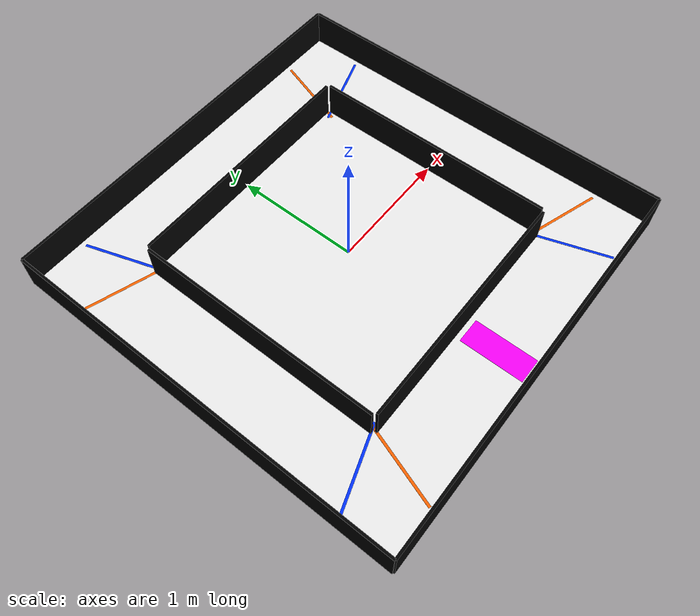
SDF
<sdf version="1.8">
 <world name="wro2026_open_narrow">
  <physics name="1ms" type="ignored">
   <max_step_size>0.001</max_step_size>
   <real_time_factor>1.0</real_time_factor>
  </physics>
  <plugin filename="gz-sim-physics-system" name="gz::sim::systems::Physics"/>
  <plugin filename="gz-sim-sensors-system" name="gz::sim::systems::Sensors">
   <render_engine>ogre2</render_engine>
  </plugin>
  <plugin filename="gz-sim-scene-broadcaster-system" name="gz::sim::systems::SceneBroadcaster"/>
  <plugin filename="gz-sim-user-commands-system" name="gz::sim::systems::UserCommands"/>
  <light name="sun" type="directional">
   <pose>0 0 10 0 0 0</pose>
   <diffuse>0.8 0.8 0.8 1</diffuse>
   <specular>0.2 0.2 0.2 1</specular>
   <direction>-0.5 0.1 -0.9</direction>
  </light>
  <model name="ground">
   <static>true</static>
   <link name="link">
    <collision name="col"><geometry><box><size>3.2 3.2 0.01</size></box></geometry></collision>
    <visual name="vis">
     <geometry><box><size>3.2 3.2 0.01</size></box></geometry>
     <material><ambient>0.95 0.95 0.95 1</ambient><diffuse>0.95 0.95 0.95 1</diffuse></material>
    </visual>
   </link>
  </model>
  <model name="wall_north">
   <static>true</static>
   <pose>0 1.6 0.15 0 0 0</pose>
   <link name="link">
    <collision name="col"><geometry><box><size>3.2 0.02 0.3</size></box></geometry></collision>
    <visual name="vis">
     <geometry><box><size>3.2 0.02 0.3</size></box></geometry>
     <material><ambient>0 0 0 1</ambient><diffuse>0 0 0 1</diffuse></material>
    </visual>
   </link>
  </model>
  <model name="wall_south">
   <static>true</static>
   <pose>0 -1.6 0.15 0 0 0</pose>
   <link name="link">
    <collision name="col"><geometry><box><size>3.2 0.02 0.3</size></box></geometry></collision>
    <visual name="vis">
     <geometry><box><size>3.2 0.02 0.3</size></box></geometry>
     <material><ambient>0 0 0 1</ambient><diffuse>0 0 0 1</diffuse></material>
    </visual>
   </link>
  </model>
  <model name="wall_east">
   <static>true</static>
   <pose>1.6 0 0.15 0 0 0</pose>
   <link name="link">
    <collision name="col"><geometry><box><size>0.02 3.2 0.3</size></box></geometry></collision>
    <visual name="vis">
     <geometry><box><size>0.02 3.2 0.3</size></box></geometry>
     <material><ambient>0 0 0 1</ambient><diffuse>0 0 0 1</diffuse></material>
    </visual>
   </link>
  </model>
  <model name="wall_west">
   <static>true</static>
   <pose>-1.6 0 0.15 0 0 0</pose>
   <link name="link">
    <collision name="col"><geometry><box><size>0.02 3.2 0.3</size></box></geometry></collision>
    <visual name="vis">
     <geometry><box><size>0.02 3.2 0.3</size></box></geometry>
     <material><ambient>0 0 0 1</ambient><diffuse>0 0 0 1</diffuse></material>
    </visual>
   </link>
  </model>
  <model name="inner_north">
   <static>true</static>
   <pose>0 1.0 0.15 0 0 0</pose>
   <link name="link">
    <collision name="col"><geometry><box><size>1.96 0.02 0.3</size></box></geometry></collision>
    <visual name="vis">
     <geometry><box><size>1.96 0.02 0.3</size></box></geometry>
     <material><ambient>0 0 0 1</ambient><diffuse>0 0 0 1</diffuse></material>
    </visual>
   </link>
  </model>
  <model name="inner_south">
   <static>true</static>
   <pose>0 -1.0 0.15 0 0 0</pose>
   <link name="link">
    <collision name="col"><geometry><box><size>1.96 0.02 0.3</size></box></geometry></collision>
    <visual name="vis">
     <geometry><box><size>1.96 0.02 0.3</size></box></geometry>
     <material><ambient>0 0 0 1</ambient><diffuse>0 0 0 1</diffuse></material>
    </visual>
   </link>
  </model>
  <model name="inner_east">
   <static>true</static>
   <pose>1.0 0 0.15 0 0 0</pose>
   <link name="link">
    <collision name="col"><geometry><box><size>0.02 1.96 0.3</size></box></geometry></collision>
    <visual name="vis">
     <geometry><box><size>0.02 1.96 0.3</size></box></geometry>
     <material><ambient>0 0 0 1</ambient><diffuse>0 0 0 1</diffuse></material>
    </visual>
   </link>
  </model>
  <model name="inner_west">
   <static>true</static>
   <pose>-1.0 0 0.15 0 0 0</pose>
   <link name="link">
    <collision name="col"><geometry><box><size>0.02 1.96 0.3</size></box></geometry></collision>
    <visual name="vis">
     <geometry><box><size>0.02 1.96 0.3</size></box></geometry>
     <material><ambient>0 0 0 1</ambient><diffuse>0 0 0 1</diffuse></material>
    </visual>
   </link>
  </model>
  <model name="start_zone">
   <static>true</static>
   <pose>0 -1.3 0.006 0 0 0</pose>
   <link name="link">
    <visual name="vis">
     <geometry><box><size>0.2 0.5 0.001</size></box></geometry>
     <material><ambient>1 0 1 1</ambient><diffuse>1 0 1 1</diffuse></material>
    </visual>
   </link>
  </model>
  <model name="orange_line_nw">
   <static>true</static>
   <pose>-1.2400 1.0550 0.006 0 0 -0.3187</pose>
   <link name="link">
    <visual name="vis">
     <geometry><box><size>0.6530 0.02 0.001</size></box></geometry>
     <material><ambient>1.0 0.4 0 1</ambient><diffuse>1.0 0.4 0 1</diffuse></material>
    </visual>
   </link>
  </model>
  <model name="blue_line_nw">
   <static>true</static>
   <pose>-1.0550 1.2400 0.006 0 0 -1.2520</pose>
   <link name="link">
    <visual name="vis">
     <geometry><box><size>0.6530 0.02 0.001</size></box></geometry>
     <material><ambient>0 0.2 1.0 1</ambient><diffuse>0 0.2 1.0 1</diffuse></material>
    </visual>
   </link>
  </model>
  <model name="orange_line_ne">
   <static>true</static>
   <pose>1.0550 1.2400 0.006 0 0 -1.8895</pose>
   <link name="link">
    <visual name="vis">
     <geometry><box><size>0.6530 0.02 0.001</size></box></geometry>
     <material><ambient>1.0 0.4 0 1</ambient><diffuse>1.0 0.4 0 1</diffuse></material>
    </visual>
   </link>
  </model>
  <model name="blue_line_ne">
   <static>true</static>
   <pose>1.2400 1.0550 0.006 0 0 -2.8228</pose>
   <link name="link">
    <visual name="vis">
     <geometry><box><size>0.6530 0.02 0.001</size></box></geometry>
     <material><ambient>0 0.2 1.0 1</ambient><diffuse>0 0.2 1.0 1</diffuse></material>
    </visual>
   </link>
  </model>
  <model name="orange_line_se">
   <static>true</static>
   <pose>1.2400 -1.0550 0.006 0 0 2.8228</pose>
   <link name="link">
    <visual name="vis">
     <geometry><box><size>0.6530 0.02 0.001</size></box></geometry>
     <material><ambient>1.0 0.4 0 1</ambient><diffuse>1.0 0.4 0 1</diffuse></material>
    </visual>
   </link>
  </model>
  <model name="blue_line_se">
   <static>true</static>
   <pose>1.0550 -1.2400 0.006 0 0 1.8895</pose>
   <link name="link">
    <visual name="vis">
     <geometry><box><size>0.6530 0.02 0.001</size></box></geometry>
     <material><ambient>0 0.2 1.0 1</ambient><diffuse>0 0.2 1.0 1</diffuse></material>
    </visual>
   </link>
  </model>
  <model name="orange_line_sw">
   <static>true</static>
   <pose>-1.0550 -1.2400 0.006 0 0 1.2520</pose>
   <link name="link">
    <visual name="vis">
     <geometry><box><size>0.6530 0.02 0.001</size></box></geometry>
     <material><ambient>1.0 0.4 0 1</ambient><diffuse>1.0 0.4 0 1</diffuse></material>
    </visual>
   </link>
  </model>
  <model name="blue_line_sw">
   <static>true</static>
   <pose>-1.2400 -1.0550 0.006 0 0 0.3187</pose>
   <link name="link">
    <visual name="vis">
     <geometry><box><size>0.6530 0.02 0.001</size></box></geometry>
     <material><ambient>0 0.2 1.0 1</ambient><diffuse>0 0.2 1.0 1</diffuse></material>
    </visual>
   </link>
  </model>
 </world>
</sdf>
